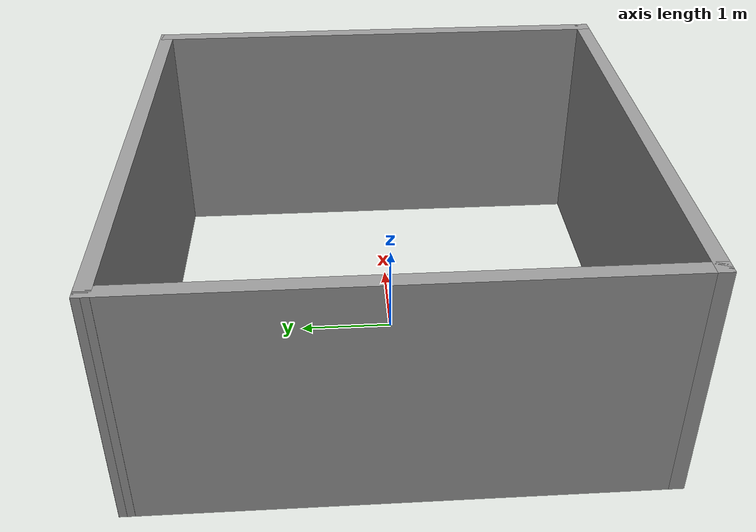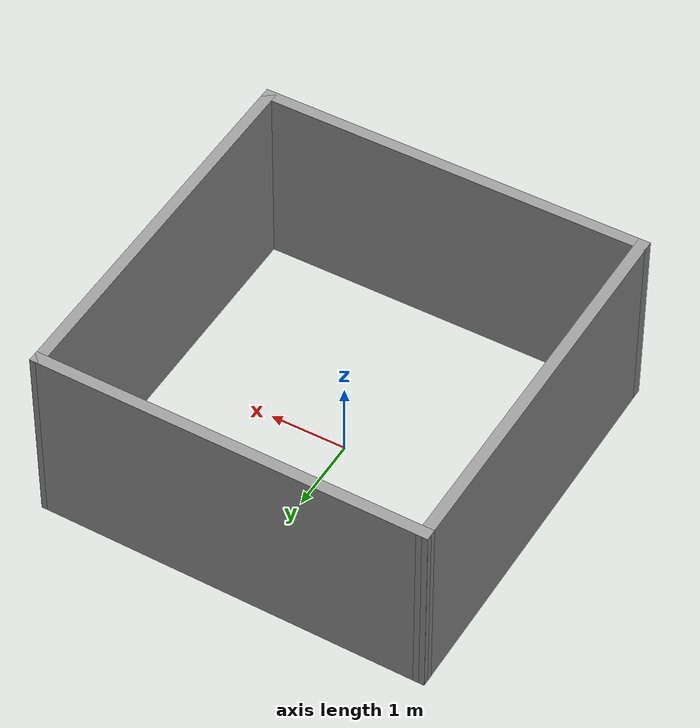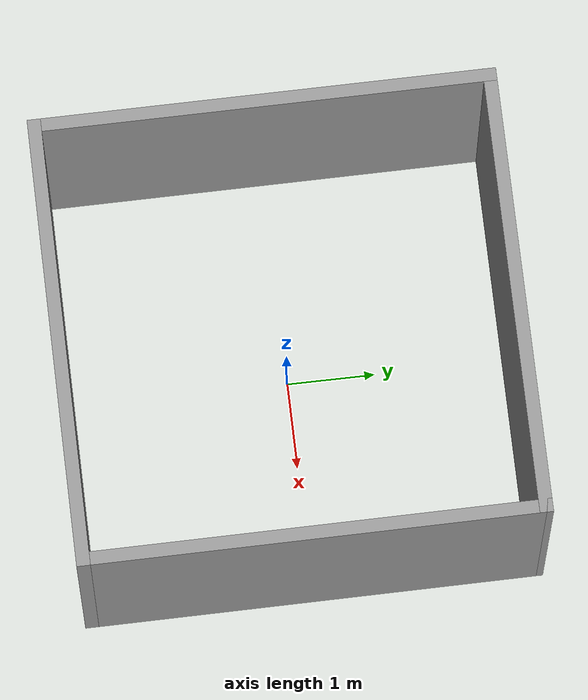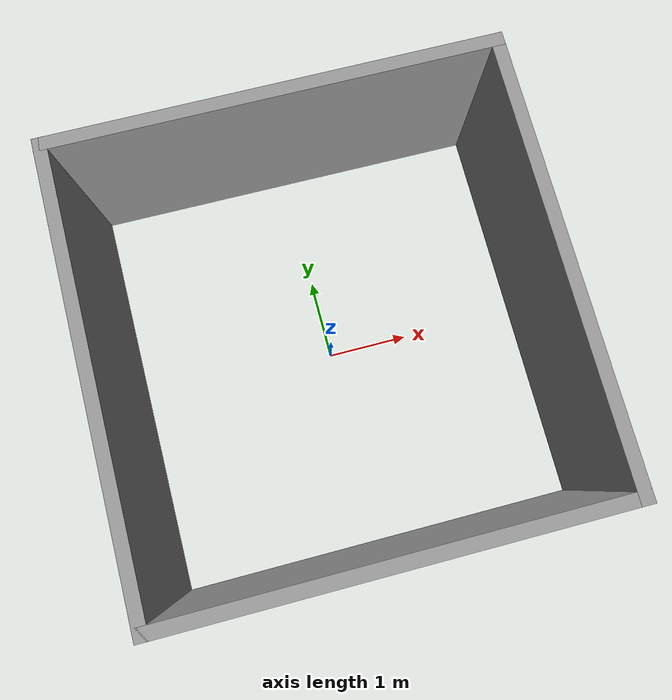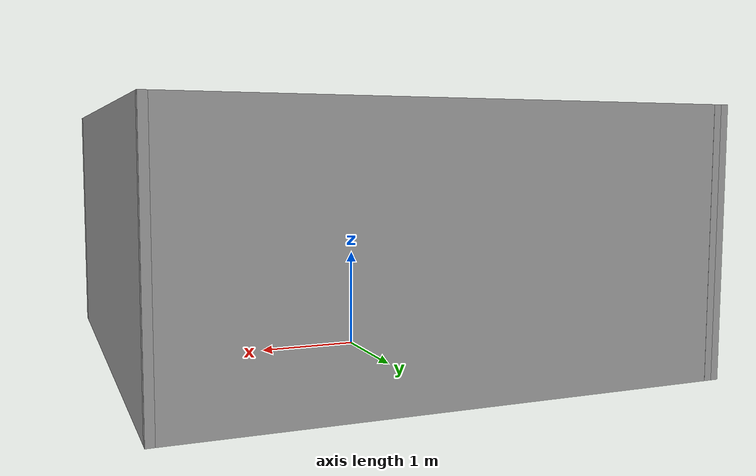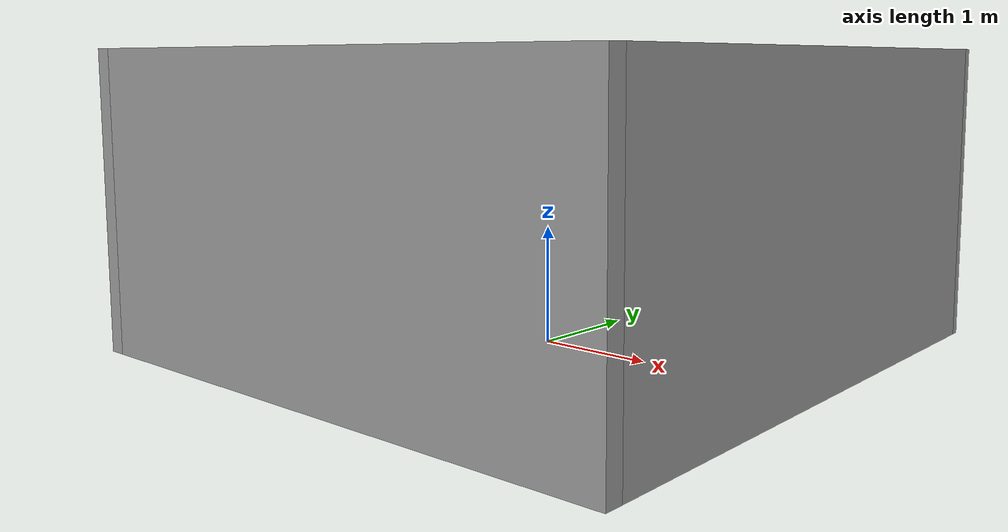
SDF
<?xml version='1.0'?>
<sdf version='1.7'>
  <model name='wall2'>
    <pose>0 0.030447 0 0 -0 0</pose>
    <link name='Wall_0'>
      <collision name='Wall_0_Collision'>
        <geometry>
          <box>
            <size>5.15036 0.15 2.5</size>
          </box>
        </geometry>
        <pose>0 0 1.25 0 -0 0</pose>
      </collision>
      <visual name='Wall_0_Visual'>
        <pose>0 0 1.25 0 -0 0</pose>
        <geometry>
          <box>
            <size>5.15036 0.15 2.5</size>
          </box>
        </geometry>
        <material>
          <script>
            <uri>file://media/materials/scripts/gazebo.material</uri>
            <name>Gazebo/Grey</name>
          </script>
          <ambient>1 1 1 1</ambient>
        </material>
        <meta>
          <layer>0</layer>
        </meta>
      </visual>
      <pose>0 2.49955 0 0 -0 -0.011999</pose>
    </link>
    <link name='Wall_1'>
      <collision name='Wall_1_Collision'>
        <geometry>
          <box>
            <size>5.15 0.15 2.5</size>
          </box>
        </geometry>
        <pose>0 0 1.25 0 -0 0</pose>
      </collision>
      <visual name='Wall_1_Visual'>
        <pose>0 0 1.25 0 -0 0</pose>
        <geometry>
          <box>
            <size>5.15 0.15 2.5</size>
          </box>
        </geometry>
        <material>
          <script>
            <uri>file://media/materials/scripts/gazebo.material</uri>
            <name>Gazebo/Grey</name>
          </script>
          <ambient>1 1 1 1</ambient>
        </material>
        <meta>
          <layer>0</layer>
        </meta>
      </visual>
      <pose>2.5 -0.030447 0 0 -0 -1.5708</pose>
    </link>
    <link name='Wall_2'>
      <collision name='Wall_2_Collision'>
        <geometry>
          <box>
            <size>5.15 0.15 2.5</size>
          </box>
        </geometry>
        <pose>0 0 1.25 0 -0 0</pose>
      </collision>
      <visual name='Wall_2_Visual'>
        <pose>0 0 1.25 0 -0 0</pose>
        <geometry>
          <box>
            <size>5.15 0.15 2.5</size>
          </box>
        </geometry>
        <material>
          <script>
            <uri>file://media/materials/scripts/gazebo.material</uri>
            <name>Gazebo/Grey</name>
          </script>
          <ambient>1 1 1 1</ambient>
        </material>
        <meta>
          <layer>0</layer>
        </meta>
      </visual>
      <pose>0 -2.53045 0 0 -0 3.14159</pose>
    </link>
    <link name='Wall_3'>
      <collision name='Wall_3_Collision'>
        <geometry>
          <box>
            <size>5.21 0.15 2.5</size>
          </box>
        </geometry>
        <pose>0 0 1.25 0 -0 0</pose>
      </collision>
      <visual name='Wall_3_Visual'>
        <pose>0 0 1.25 0 -0 0</pose>
        <geometry>
          <box>
            <size>5.21 0.15 2.5</size>
          </box>
        </geometry>
        <material>
          <script>
            <uri>file://media/materials/scripts/gazebo.material</uri>
            <name>Gazebo/Grey</name>
          </script>
          <ambient>1 1 1 1</ambient>
        </material>
        <meta>
          <layer>0</layer>
        </meta>
      </visual>
      <pose>-2.5 -0.000447 0 0 -0 1.5708</pose>
    </link>
    <static>1</static>
  </model>
</sdf>
